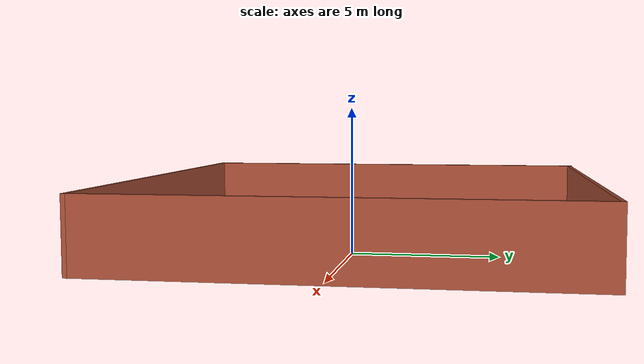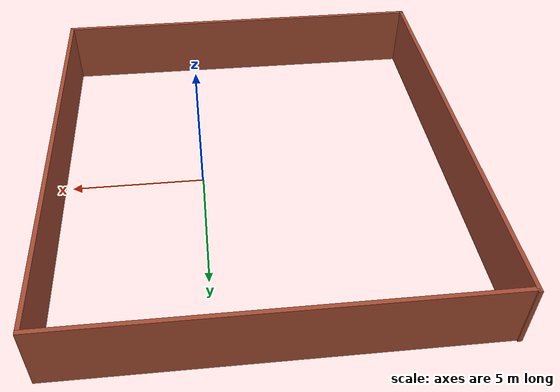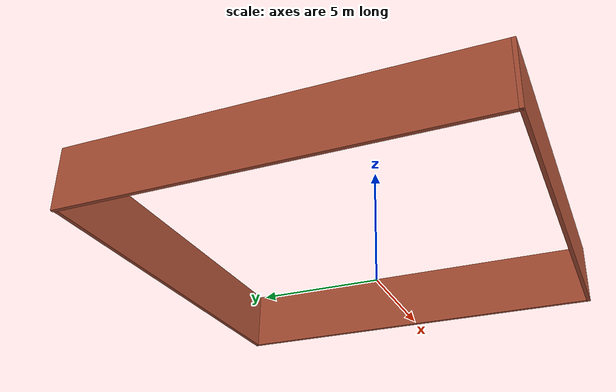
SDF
<?xml version='1.0'?>
<sdf version='1.7'>
  <model name='shooter_field'>
    <pose>-2.09369 0.269886 0 0 -0 0</pose>
    <link name='Wall_16'>
      <collision name='Wall_16_Collision'>
        <geometry>
          <box>
            <size>16 0.15 2.5</size>
          </box>
        </geometry>
        <pose>0 0 1.25 0 -0 0</pose>
      </collision>
      <visual name='Wall_16_Visual'>
        <pose>0 0 1.25 0 -0 0</pose>
        <geometry>
          <box>
            <size>16 0.15 2.5</size>
          </box>
        </geometry>
        <material>
          <script>
            <uri>file://media/materials/scripts/gazebo.material</uri>
            <name>Gazebo/Bricks</name>
          </script>
          <ambient>0.921569 0.807843 0.615686 1</ambient>
        </material>
        <meta>
          <layer>0</layer>
        </meta>
      </visual>
      <pose>-7.425 0.023262 0 0 -0 1.5708</pose>
    </link>
    <link name='Wall_17'>
      <collision name='Wall_17_Collision'>
        <geometry>
          <box>
            <size>15 0.15 2.5</size>
          </box>
        </geometry>
        <pose>0 0 1.25 0 -0 0</pose>
      </collision>
      <visual name='Wall_17_Visual'>
        <pose>0 0 1.25 0 -0 0</pose>
        <geometry>
          <box>
            <size>15 0.15 2.5</size>
          </box>
        </geometry>
        <material>
          <script>
            <uri>file://media/materials/scripts/gazebo.material</uri>
            <name>Gazebo/Bricks</name>
          </script>
          <ambient>0.921569 0.807843 0.615686 1</ambient>
        </material>
        <meta>
          <layer>0</layer>
        </meta>
      </visual>
      <pose>0 7.90174 0 0 -0 0</pose>
    </link>
    <link name='Wall_18'>
      <collision name='Wall_18_Collision'>
        <geometry>
          <box>
            <size>16 0.15 2.5</size>
          </box>
        </geometry>
        <pose>0 0 1.25 0 -0 0</pose>
      </collision>
      <visual name='Wall_18_Visual'>
        <pose>0 0 1.25 0 -0 0</pose>
        <geometry>
          <box>
            <size>16 0.15 2.5</size>
          </box>
        </geometry>
        <material>
          <script>
            <uri>file://media/materials/scripts/gazebo.material</uri>
            <name>Gazebo/Bricks</name>
          </script>
          <ambient>0.921569 0.807843 0.615686 1</ambient>
        </material>
        <meta>
          <layer>0</layer>
        </meta>
      </visual>
      <pose>7.425 -0.023262 0 0 -0 -1.5708</pose>
    </link>
    <link name='Wall_19'>
      <collision name='Wall_19_Collision'>
        <geometry>
          <box>
            <size>15 0.15 2.5</size>
          </box>
        </geometry>
        <pose>0 0 1.25 0 -0 0</pose>
      </collision>
      <visual name='Wall_19_Visual'>
        <pose>0 0 1.25 0 -0 0</pose>
        <geometry>
          <box>
            <size>15 0.15 2.5</size>
          </box>
        </geometry>
        <material>
          <script>
            <uri>file://media/materials/scripts/gazebo.material</uri>
            <name>Gazebo/Bricks</name>
          </script>
          <ambient>0.921569 0.807843 0.615686 1</ambient>
        </material>
        <meta>
          <layer>0</layer>
        </meta>
      </visual>
      <pose>0 -7.94826 0 0 -0 3.14159</pose>
    </link>
    <static>1</static>
  </model>
</sdf>
